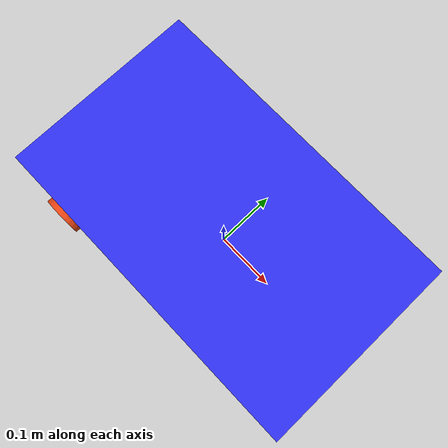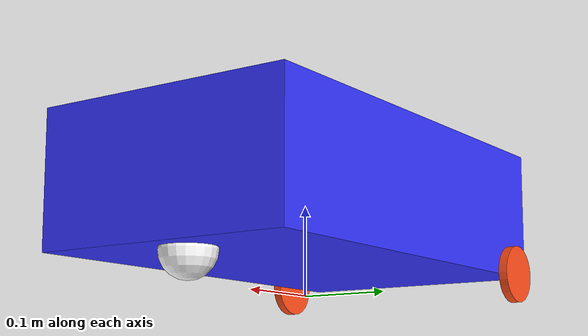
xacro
<?xml version="1.0"?>
<robot xmlns:xacro="http://www.ros.org/wiki/xacro">

    <xacro:include filename="colours.xacro"/>
    <xacro:include filename="inertial_macros.xacro"/>
    <xacro:include filename="ros_control.xacro"/>

    <xacro:property name="chassis_mass" value="2.0"/>
    <xacro:property name="chassis_length" value="0.5"/>
    <xacro:property name="chassis_width" value="0.3"/>
    <xacro:property name="chassis_height" value="0.15"/>

    <xacro:property name="wheel_radius" value="0.033"/>
    <xacro:property name="wheel_thickness" value="0.01"/>
    <xacro:property name="wheel_mass" value="0.1"/>
    <xacro:property name="wheel_offset_x" value="-0.2"/>
    <xacro:property name="wheel_offset_y" value="0.16"/>
    <xacro:property name="wheel_offset_z" value="${wheel_radius}"/>

    <xacro:property name="caster_wheel_radius" value="0.03"/>
    <xacro:property name="caster_wheel_mass" value="0.5"/>
    <xacro:property name="caster_wheel_offset_x" value="0.4"/>
    <xacro:property name="caster_wheel_offset_z" value="${-wheel_offset_z + caster_wheel_radius}"/>

    <!-- BASE LINK -->
    <link name="base_link">
    </link>

    <!-- CHASSIS -->
    <joint name="chassis_joint" type="fixed">
        <parent link="base_link"/>
        <child link="chassis"/>
        <origin xyz="${wheel_offset_x} 0 ${wheel_offset_z}"/>
    </joint>

    <link name="chassis">
        <visual>
            <origin xyz="${chassis_length/2-0.05} 0 ${chassis_height/2}"/>
            <geometry>
                <box size="${chassis_length} ${chassis_width} ${chassis_height}"/>
            </geometry>
            <material name="blue"/>
        </visual>
        <collision>
            <origin xyz="${chassis_length/2-0.05} 0 ${chassis_height/2}"/>
            <geometry>
                <box size="${chassis_length} ${chassis_width} ${chassis_height}"/>
            </geometry>
        </collision>
        <xacro:inertial_box mass="${chassis_mass}" x="${chassis_length}" y="${chassis_width}" z="${chassis_height}">
            <origin xyz="${chassis_length/2} 0 ${chassis_height/2}" rpy="0 0 0"/>
        </xacro:inertial_box>
    </link>

    <gazebo reference="chassis">
        <material>Gazebo/Blue</material>
    </gazebo>

    <!-- LEFT WHEEL -->
    <joint name="left_wheel_joint" type="continuous">
        <parent link="chassis"/>
        <child link="left_wheel"/>
        <origin xyz="0 ${wheel_offset_y} 0" rpy="${-pi/2} 0 0"/>
        <axis xyz="0 0 1"/>
    </joint>

    <link name="left_wheel">
        <visual>
            <geometry>
                <cylinder radius="${wheel_radius}" length="${wheel_thickness}"/>
            </geometry>
            <material name="orange"/>
        </visual>
        <collision>
            <geometry>
                <cylinder radius="${wheel_radius}" length="${wheel_thickness}"/>
            </geometry>
        </collision>
        <xacro:inertial_cylinder mass="${wheel_mass}" radius="${wheel_radius}" length="${wheel_thickness}">
            <origin xyz="0 0 0" rpy="0 0 0"/>
        </xacro:inertial_cylinder>
    </link>

    <gazebo reference="left_wheel">
        <material>Gazebo/Orange</material>
    </gazebo>

    <!-- RIGHT WHEEL -->
    <joint name="right_wheel_joint" type="continuous">
        <parent link="chassis"/>
        <child link="right_wheel"/>
        <origin xyz="0 ${-wheel_offset_y} 0" rpy="${pi/2} 0 0"/>
        <axis xyz="0 0 -1"/>
    </joint>

    <link name="right_wheel">
        <visual>
            <geometry>
                <cylinder radius="${wheel_radius}" length="${wheel_thickness}"/>
            </geometry>
            <material name="orange"/>
        </visual>
        <collision>
            <geometry>
                <cylinder radius="${wheel_radius}" length="${wheel_thickness}"/>
            </geometry>
        </collision>
        <xacro:inertial_cylinder mass="${wheel_mass}" radius="${wheel_radius}" length="${wheel_thickness}">
            <origin xyz="0 0 0" rpy="0 0 0"/>
        </xacro:inertial_cylinder>
    </link>

    <gazebo reference="right_wheel">
        <material>Gazebo/Orange</material>
    </gazebo>

    <!-- CASTER WHEEL -->
    <joint name="caster_wheel_joint" type="fixed">
        <parent link="chassis"/>
        <child link="caster_wheel"/>
        <origin xyz="${caster_wheel_offset_x} 0 ${caster_wheel_offset_z}"/>
    </joint>

    <link name="caster_wheel">
        <visual>
            <geometry>
                <sphere radius="${caster_wheel_radius}"/>
            </geometry>
            <material name="white"/>
        </visual>
        <collision>
            <geometry>
                <sphere radius="${caster_wheel_radius}"/>
            </geometry>
        </collision>
        <xacro:inertial_sphere mass="${caster_wheel_mass}" radius="${caster_wheel_radius}">
            <origin xyz="0 0 0" rpy="0 0 0"/>
        </xacro:inertial_sphere>
    </link>

    <gazebo reference="caster_wheel">
        <material>Gazebo/White</material>
        <mu1 value="0.001"/>
        <mu2 value="0.001"/>
    </gazebo>
</robot>

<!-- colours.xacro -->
<robot xmlns:xacro="http://www.ros.org/wiki/xacro">

    <material name="white">
    <color rgba="1 1 1 1"/>
    </material>

    <material name="orange">
        <color rgba="1 0.3 0.1 1"/>
    </material>

    <material name="blue">
        <color rgba="0.2 0.2 1 1"/>
    </material>

    <material name="black">
        <color rgba="0 0 0 1"/>
    </material>

</robot>
